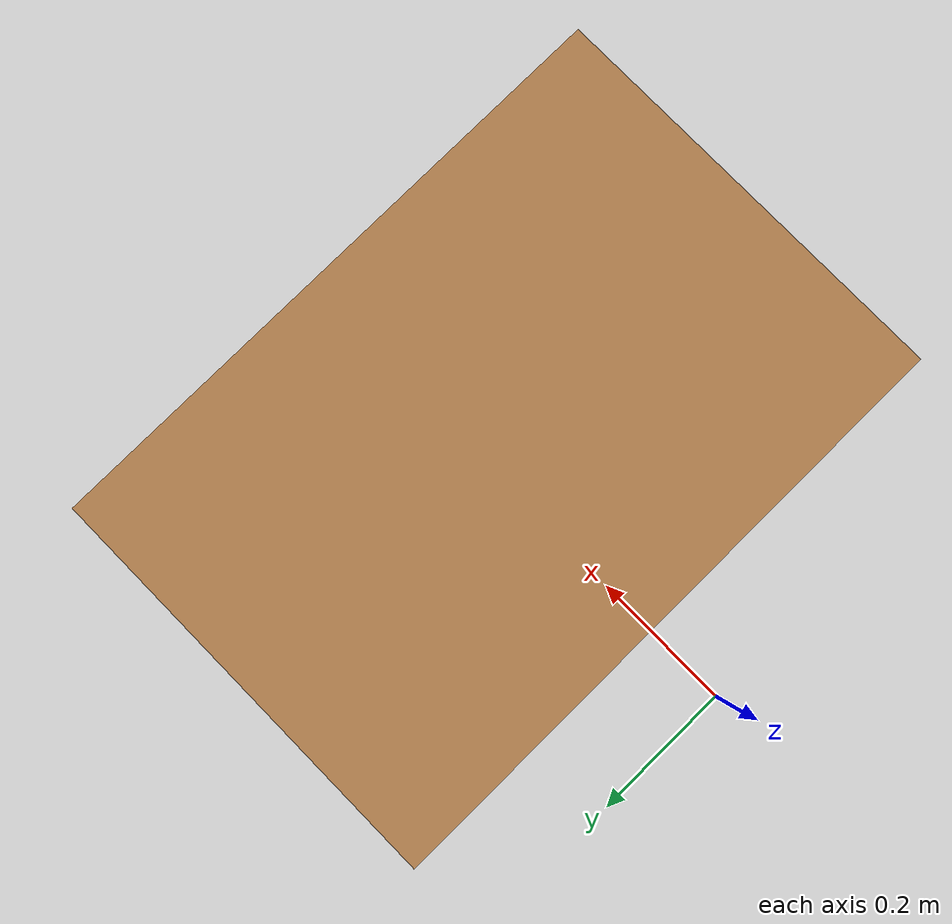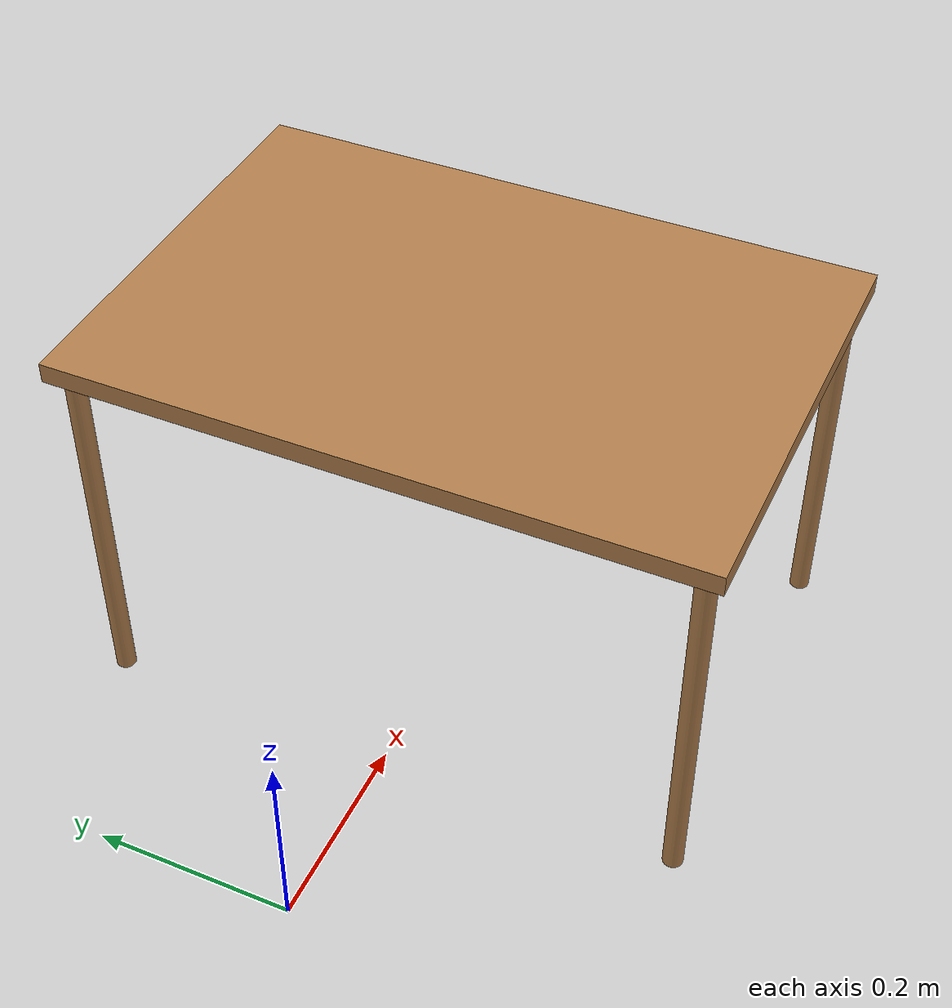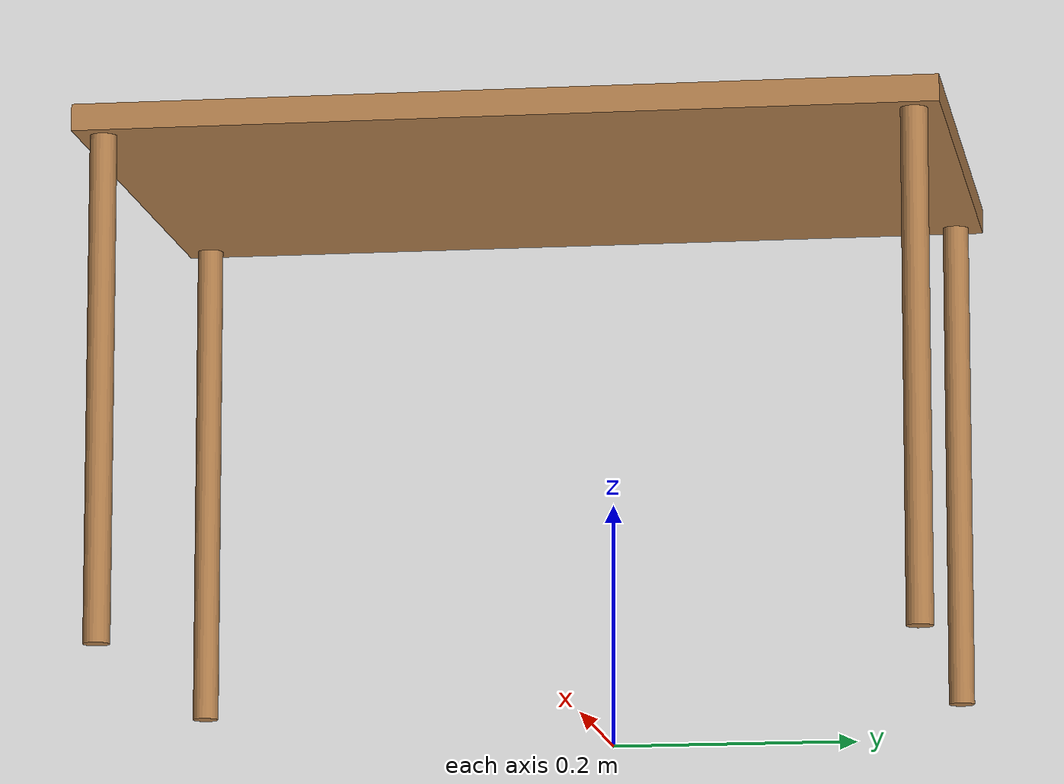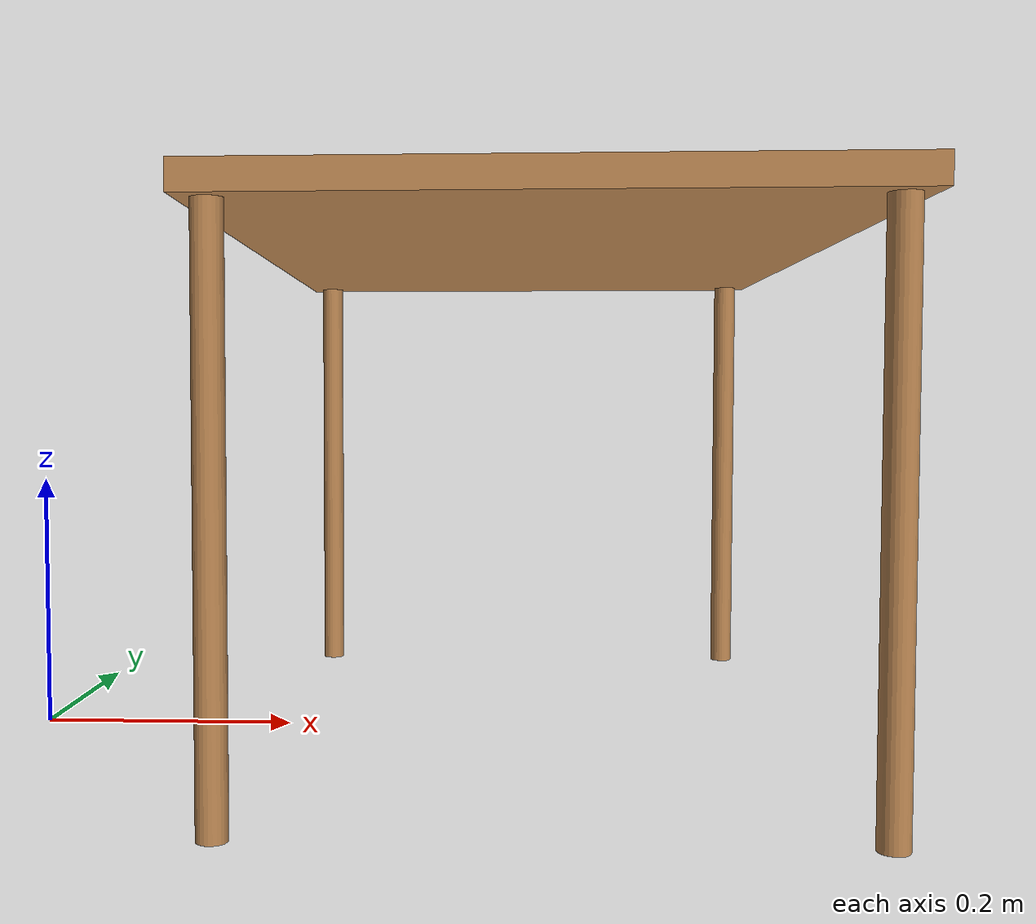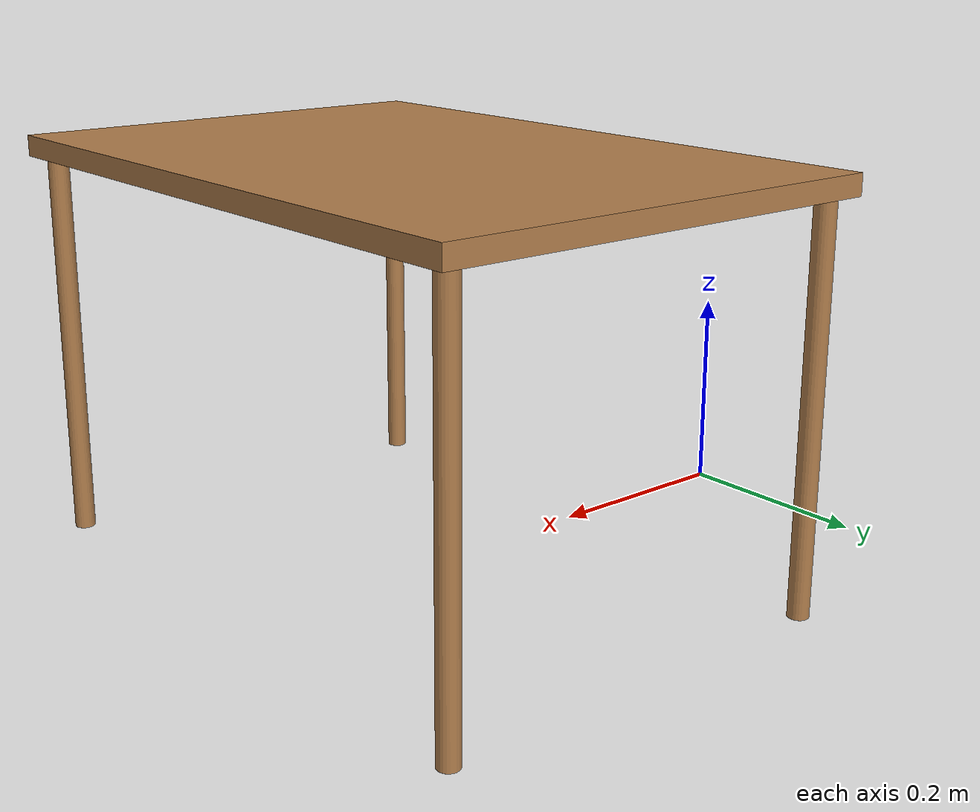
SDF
<?xml version='1.0'?>
<sdf version='1.5'>
  <model name='iCubTable'>
      <pose>0.4 0 0 0 0 0</pose>

    <link name='leg_0'>
      <pose frame=''>-0.2 0.3 0.19 0 -0 0</pose>
      <gravity>1</gravity>
      <self_collide>0</self_collide>
      <kinematic>0</kinematic>
      <inertial>
        <mass>1</mass>
        <pose frame=''>0 0 0 0 -0 0</pose>
        <inertia>
          <ixx>1</ixx>
          <ixy>0</ixy>
          <ixz>0</ixz>
          <iyy>1</iyy>
          <iyz>0</iyz>
          <izz>1</izz>
        </inertia>
      </inertial>
      <visual name='visual'>
        <pose frame=''>0 0 0 0 -0 0</pose>
        <geometry>
          <cylinder>
            <radius>0.01</radius>
            <length>0.38</length>
          </cylinder>
        </geometry>
        <material>
          <lighting>1</lighting>
          <script>
            <uri>file://media/materials/scripts/gazebo.material</uri>
            <name>Gazebo/Wood</name>
          </script>
          <shader type='pixel'>
            <normal_map>__default__</normal_map>
          </shader>
          <ambient>0.3 0.3 0.3 1</ambient>
          <diffuse>0.7 0.7 0.7 1</diffuse>
          <specular>0.01 0.01 0.01 1</specular>
          <emissive>0 0 0 1</emissive>
        </material>
        <cast_shadows>1</cast_shadows>
        <transparency>0</transparency>
      </visual>
      <collision name='collision'>
        <laser_retro>0</laser_retro>
        <max_contacts>10</max_contacts>
        <pose frame=''>0 0 0 0 -0 0</pose>
        <geometry>
          <cylinder>
            <radius>0.01</radius>
            <length>0.38</length>
          </cylinder>
        </geometry>
        <surface>
          <friction>
            <ode>
              <mu>1</mu>
              <mu2>1</mu2>
              <fdir1>0 0 0</fdir1>
              <slip1>0</slip1>
              <slip2>0</slip2>
            </ode>
          </friction>
          <bounce>
            <restitution_coefficient>0</restitution_coefficient>
            <threshold>1e+06</threshold>
          </bounce>
          <contact>
            <collide_without_contact>0</collide_without_contact>
            <collide_without_contact_bitmask>1</collide_without_contact_bitmask>
            <collide_bitmask>1</collide_bitmask>
            <ode>
              <soft_cfm>0</soft_cfm>
              <soft_erp>0.2</soft_erp>
              <kp>1e+13</kp>
              <kd>1</kd>
              <max_vel>0.01</max_vel>
              <min_depth>0</min_depth>
            </ode>
            <bullet>
              <split_impulse>1</split_impulse>
              <split_impulse_penetration_threshold>-0.01</split_impulse_penetration_threshold>
              <soft_cfm>0</soft_cfm>
              <soft_erp>0.2</soft_erp>
              <kp>1e+13</kp>
              <kd>1</kd>
            </bullet>
          </contact>
        </surface>
      </collision>
    </link>

    <link name='leg_1'>
      <pose frame=''>-0.2 -0.3 0.19 0 -0 0</pose>
      <inertial>
        <mass>1</mass>
        <pose frame=''>0 0 0 0 -0 0</pose>
        <inertia>
          <ixx>1</ixx>
          <ixy>0</ixy>
          <ixz>0</ixz>
          <iyy>1</iyy>
          <iyz>0</iyz>
          <izz>1</izz>
        </inertia>
      </inertial>
      <self_collide>0</self_collide>
      <kinematic>0</kinematic>
      <gravity>1</gravity>
      <visual name='ModelPreview_1::leg_1::visual'>
        <pose frame=''>0 0 0 0 -0 0</pose>
        <geometry>
          <cylinder>
            <radius>0.01</radius>
            <length>0.38</length>
          </cylinder>
        </geometry>
        <material>
          <lighting>1</lighting>
          <script>
            <uri>file://media/materials/scripts/gazebo.material</uri>
            <name>Gazebo/Wood</name>
          </script>
          <shader type='pixel'>
            <normal_map>__default__</normal_map>
          </shader>
          <ambient>0.3 0.3 0.3 1</ambient>
          <diffuse>0.7 0.7 0.7 1</diffuse>
          <specular>0.01 0.01 0.01 1</specular>
          <emissive>0 0 0 1</emissive>
        </material>
        <cast_shadows>1</cast_shadows>
        <transparency>0</transparency>
      </visual>
      <collision name='collision'>
        <laser_retro>0</laser_retro>
        <max_contacts>10</max_contacts>
        <pose frame=''>0 0 0 0 -0 0</pose>
        <geometry>
          <cylinder>
            <radius>0.01</radius>
            <length>0.38</length>
          </cylinder>
        </geometry>
        <surface>
          <friction>
            <ode>
              <mu>1</mu>
              <mu2>1</mu2>
              <fdir1>0 0 0</fdir1>
              <slip1>0</slip1>
              <slip2>0</slip2>
            </ode>
          </friction>
          <bounce>
            <restitution_coefficient>0</restitution_coefficient>
            <threshold>1e+06</threshold>
          </bounce>
          <contact>
            <collide_without_contact>0</collide_without_contact>
            <collide_without_contact_bitmask>1</collide_without_contact_bitmask>
            <collide_bitmask>1</collide_bitmask>
            <ode>
              <soft_cfm>0</soft_cfm>
              <soft_erp>0.2</soft_erp>
              <kp>1e+13</kp>
              <kd>1</kd>
              <max_vel>0.01</max_vel>
              <min_depth>0</min_depth>
            </ode>
            <bullet>
              <split_impulse>1</split_impulse>
              <split_impulse_penetration_threshold>-0.01</split_impulse_penetration_threshold>
              <soft_cfm>0</soft_cfm>
              <soft_erp>0.2</soft_erp>
              <kp>1e+13</kp>
              <kd>1</kd>
            </bullet>
          </contact>
        </surface>
      </collision>
    </link>

    <link name='leg_2'>
      <pose frame=''>0.2 0.3 0.19 0 -0 0</pose>
      <inertial>
        <mass>1</mass>
        <pose frame=''>0 0 0 0 -0 0</pose>
        <inertia>
          <ixx>1</ixx>
          <ixy>0</ixy>
          <ixz>0</ixz>
          <iyy>1</iyy>
          <iyz>0</iyz>
          <izz>1</izz>
        </inertia>
      </inertial>
      <self_collide>0</self_collide>
      <kinematic>0</kinematic>
      <gravity>1</gravity>
      <visual name='ModelPreview_1::leg_2::visual'>
        <pose frame=''>0 0 0 0 -0 0</pose>
        <geometry>
          <cylinder>
            <radius>0.01</radius>
            <length>0.38</length>
          </cylinder>
        </geometry>
        <material>
          <lighting>1</lighting>
          <script>
            <uri>file://media/materials/scripts/gazebo.material</uri>
            <name>Gazebo/Wood</name>
          </script>
          <shader type='pixel'>
            <normal_map>__default__</normal_map>
          </shader>
          <ambient>0.3 0.3 0.3 1</ambient>
          <diffuse>0.7 0.7 0.7 1</diffuse>
          <specular>0.01 0.01 0.01 1</specular>
          <emissive>0 0 0 1</emissive>
        </material>
        <cast_shadows>1</cast_shadows>
        <transparency>0</transparency>
      </visual>
      <collision name='collision'>
        <laser_retro>0</laser_retro>
        <max_contacts>10</max_contacts>
        <pose frame=''>0 0 0 0 -0 0</pose>
        <geometry>
          <cylinder>
            <radius>0.01</radius>
            <length>0.38</length>
          </cylinder>
        </geometry>
        <surface>
          <friction>
            <ode>
              <mu>1</mu>
              <mu2>1</mu2>
              <fdir1>0 0 0</fdir1>
              <slip1>0</slip1>
              <slip2>0</slip2>
            </ode>
          </friction>
          <bounce>
            <restitution_coefficient>0</restitution_coefficient>
            <threshold>1e+06</threshold>
          </bounce>
          <contact>
            <collide_without_contact>0</collide_without_contact>
            <collide_without_contact_bitmask>1</collide_without_contact_bitmask>
            <collide_bitmask>1</collide_bitmask>
            <ode>
              <soft_cfm>0</soft_cfm>
              <soft_erp>0.2</soft_erp>
              <kp>1e+13</kp>
              <kd>1</kd>
              <max_vel>0.01</max_vel>
              <min_depth>0</min_depth>
            </ode>
            <bullet>
              <split_impulse>1</split_impulse>
              <split_impulse_penetration_threshold>-0.01</split_impulse_penetration_threshold>
              <soft_cfm>0</soft_cfm>
              <soft_erp>0.2</soft_erp>
              <kp>1e+13</kp>
              <kd>1</kd>
            </bullet>
          </contact>
        </surface>
      </collision>
    </link>

    <link name='leg_3'>
      <pose frame=''>0.2 -0.3 0.19 0 -0 0</pose>
      <inertial>
        <mass>1</mass>
        <pose frame=''>0 0 0 0 -0 0</pose>
        <inertia>
          <ixx>1</ixx>
          <ixy>0</ixy>
          <ixz>0</ixz>
          <iyy>1</iyy>
          <iyz>0</iyz>
          <izz>1</izz>
        </inertia>
      </inertial>
      <self_collide>0</self_collide>
      <kinematic>0</kinematic>
      <gravity>1</gravity>
      <visual name='ModelPreview_1::leg_3::visual'>
        <pose frame=''>0 0 0 0 -0 0</pose>
        <geometry>
          <cylinder>
            <radius>0.01</radius>
            <length>0.38</length>
          </cylinder>
        </geometry>
        <material>
          <lighting>1</lighting>
          <script>
            <uri>file://media/materials/scripts/gazebo.material</uri>
            <name>Gazebo/Wood</name>
          </script>
          <shader type='pixel'>
            <normal_map>__default__</normal_map>
          </shader>
          <ambient>0.3 0.3 0.3 1</ambient>
          <diffuse>0.7 0.7 0.7 1</diffuse>
          <specular>0.01 0.01 0.01 1</specular>
          <emissive>0 0 0 1</emissive>
        </material>
        <cast_shadows>1</cast_shadows>
        <transparency>0</transparency>
      </visual>
      <collision name='collision'>
        <laser_retro>0</laser_retro>
        <max_contacts>10</max_contacts>
        <pose frame=''>0 0 0 0 -0 0</pose>
        <geometry>
          <cylinder>
            <radius>0.01</radius>
            <length>0.38</length>
          </cylinder>
        </geometry>
        <surface>
          <friction>
            <ode>
              <mu>1</mu>
              <mu2>1</mu2>
              <fdir1>0 0 0</fdir1>
              <slip1>0</slip1>
              <slip2>0</slip2>
            </ode>
          </friction>
          <bounce>
            <restitution_coefficient>0</restitution_coefficient>
            <threshold>1e+06</threshold>
          </bounce>
          <contact>
            <collide_without_contact>0</collide_without_contact>
            <collide_without_contact_bitmask>1</collide_without_contact_bitmask>
            <collide_bitmask>1</collide_bitmask>
            <ode>
              <soft_cfm>0</soft_cfm>
              <soft_erp>0.2</soft_erp>
              <kp>1e+13</kp>
              <kd>1</kd>
              <max_vel>0.01</max_vel>
              <min_depth>0</min_depth>
            </ode>
            <bullet>
              <split_impulse>1</split_impulse>
              <split_impulse_penetration_threshold>-0.01</split_impulse_penetration_threshold>
              <soft_cfm>0</soft_cfm>
              <soft_erp>0.2</soft_erp>
              <kp>1e+13</kp>
              <kd>1</kd>
            </bullet>
          </contact>
        </surface>
      </collision>
    </link>

    <link name='table_top'>
      <pose frame=''>0 0 0.39 0 -0 0</pose>
      <gravity>1</gravity>
      <self_collide>0</self_collide>
      <kinematic>0</kinematic>
      <inertial>
        <mass>1</mass>
        <pose frame=''>0 0 0 0 -0 0</pose>
        <inertia>
          <ixx>1</ixx>
          <ixy>0</ixy>
          <ixz>0</ixz>
          <iyy>1</iyy>
          <iyz>0</iyz>
          <izz>1</izz>
        </inertia>
      </inertial>
      <visual name='visual'>
        <pose frame=''>0 0 0 0 -0 0</pose>
        <geometry>
          <box>
            <size>0.44 0.64 0.02</size>
          </box>
        </geometry>
        <material>
          <lighting>1</lighting>
          <script>
            <uri>file://media/materials/scripts/gazebo.material</uri>
            <name>Gazebo/Wood</name>
          </script>
          <shader type='pixel'>
            <normal_map>__default__</normal_map>
          </shader>
          <ambient>0.3 0.3 0.3 1</ambient>
          <diffuse>0.7 0.7 0.7 1</diffuse>
          <specular>0.01 0.01 0.01 1</specular>
          <emissive>0 0 0 1</emissive>
        </material>
        <cast_shadows>1</cast_shadows>
        <transparency>0</transparency>
      </visual>
      <collision name='collision'>
        <laser_retro>0</laser_retro>
        <max_contacts>10</max_contacts>
        <pose frame=''>0 0 0 0 -0 0</pose>
        <geometry>
          <box>
            <size>0.44 0.64 0.02</size>
          </box>
        </geometry>
        <surface>
          <friction>
            <ode>
              <mu>1</mu>
              <mu2>1</mu2>
              <fdir1>0 0 0</fdir1>
              <slip1>0</slip1>
              <slip2>0</slip2>
            </ode>
          </friction>
          <bounce>
            <restitution_coefficient>0</restitution_coefficient>
            <threshold>1e+06</threshold>
          </bounce>
          <contact>
            <collide_without_contact>0</collide_without_contact>
            <collide_without_contact_bitmask>1</collide_without_contact_bitmask>
            <collide_bitmask>1</collide_bitmask>
            <ode>
              <soft_cfm>0</soft_cfm>
              <soft_erp>0.2</soft_erp>
              <kp>1e+13</kp>
              <kd>1</kd>
              <max_vel>0.01</max_vel>
              <min_depth>0</min_depth>
            </ode>
            <bullet>
              <split_impulse>1</split_impulse>
              <split_impulse_penetration_threshold>-0.01</split_impulse_penetration_threshold>
              <soft_cfm>0</soft_cfm>
              <soft_erp>0.2</soft_erp>
              <kp>1e+13</kp>
              <kd>1</kd>
            </bullet>
          </contact>
        </surface>
      </collision>
    </link>

    <static>0</static>
    <allow_auto_disable>1</allow_auto_disable>

    <joint name="leg_0_table" type="fixed">
      <parent>leg_0</parent>
      <child>table_top</child>
    </joint>
    <joint name="leg_1_table" type="fixed">
      <parent>leg_1</parent>
      <child>table_top</child>
    </joint>
    <joint name="leg_2_table" type="fixed">
      <parent>leg_2</parent>
      <child>table_top</child>
    </joint>
    <joint name="leg_3_table" type="fixed">
      <parent>leg_3</parent>
      <child>table_top</child>
    </joint>
    <joint name="leg_0_ground" type="fixed">
      <parent>world</parent>
      <child>leg_0</child>
    </joint>
    <joint name="leg_1_ground" type="fixed">
      <parent>world</parent>
      <child>leg_1</child>
    </joint>
    <joint name="leg_2_ground" type="fixed">
      <parent>world</parent>
      <child>leg_2</child>
    </joint>
    <joint name="leg_3_ground" type="fixed">
      <parent>world</parent>
      <child>leg_3</child>
    </joint>

  </model>
</sdf>
